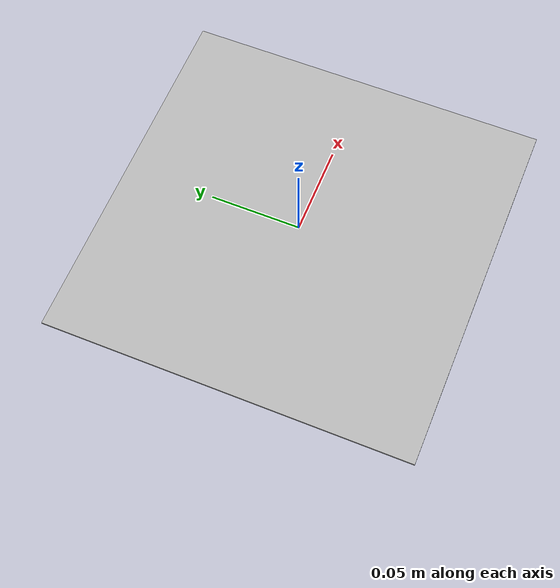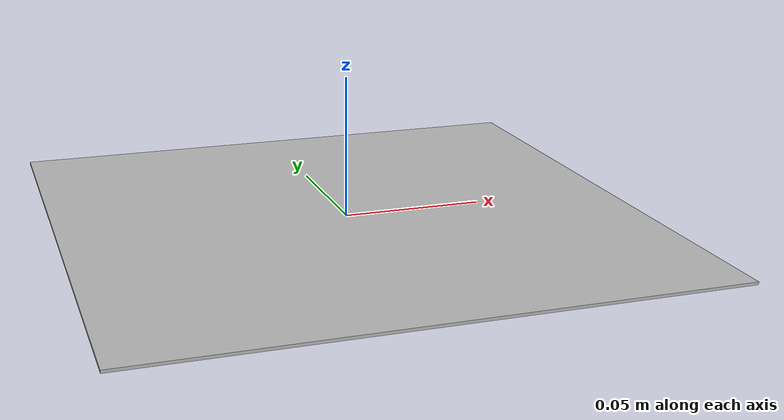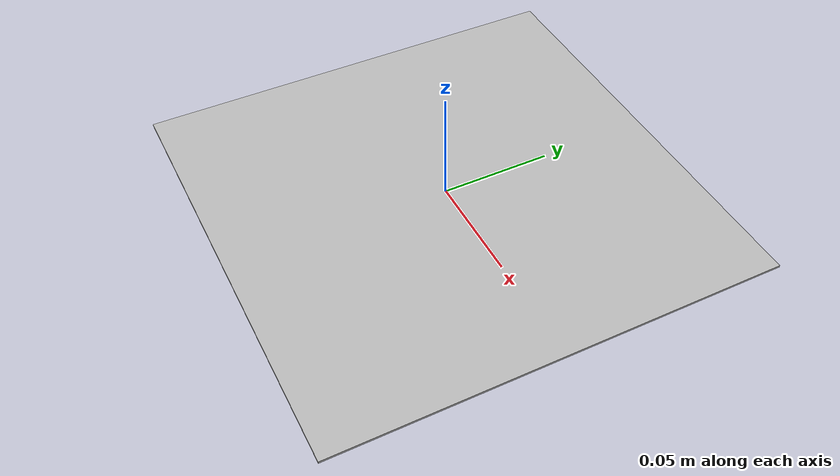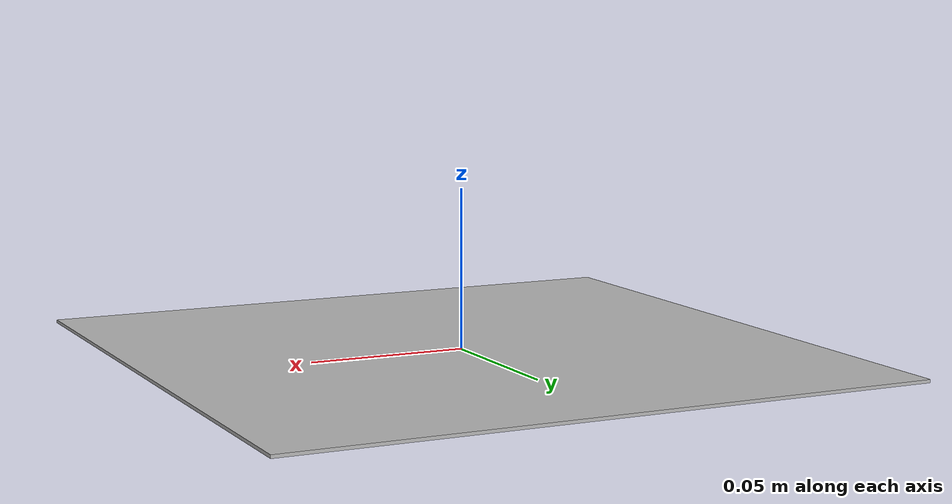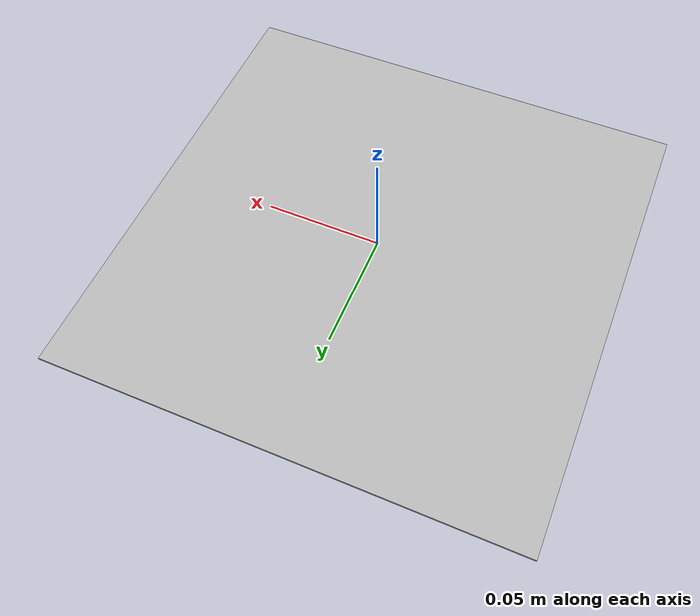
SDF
<?xml version='1.0'?>
<sdf version='1.6'>
  <model name='Apriltag36_11_00001'>
    <link name='main'>
    <pose frame=''>0 0 0 0 0 0</pose>
      <visual name='main_Visual'>
        <geometry>
          <box>
            <size>0.2016 0.2016 0.001</size>
          </box>
        </geometry>
           <material>
          <script>
            <uri>model://Apriltag36_11_00001/materials/scripts</uri>
            <uri>model://Apriltag36_11_00001/materials/textures</uri>
            <name>Apriltag36_11_00001</name>
          </script>
        </material>
      </visual>
     </link>
    <static>1</static>
  </model>
</sdf>
